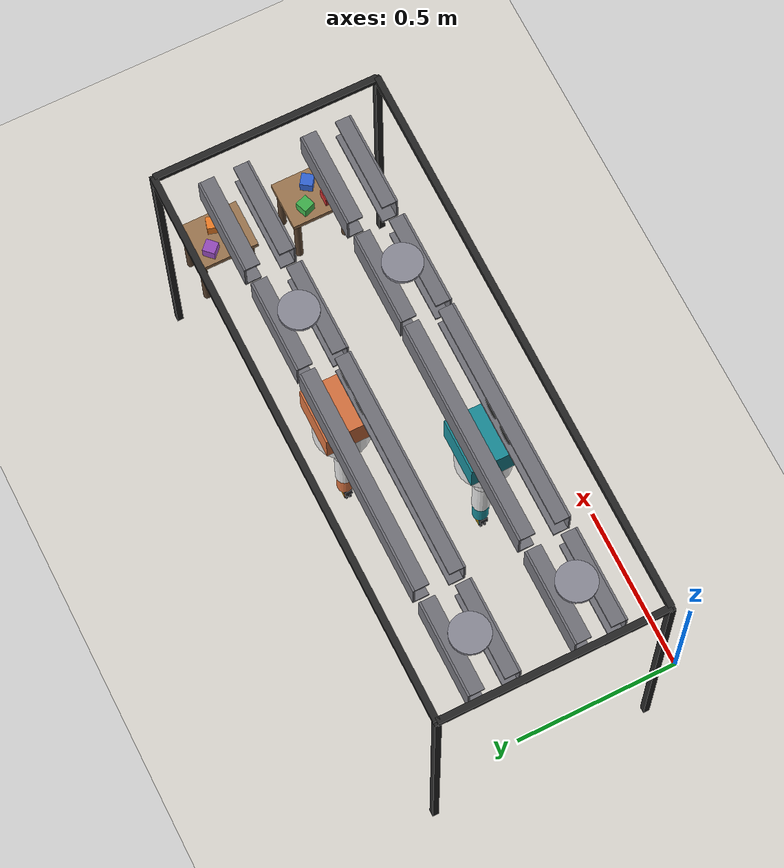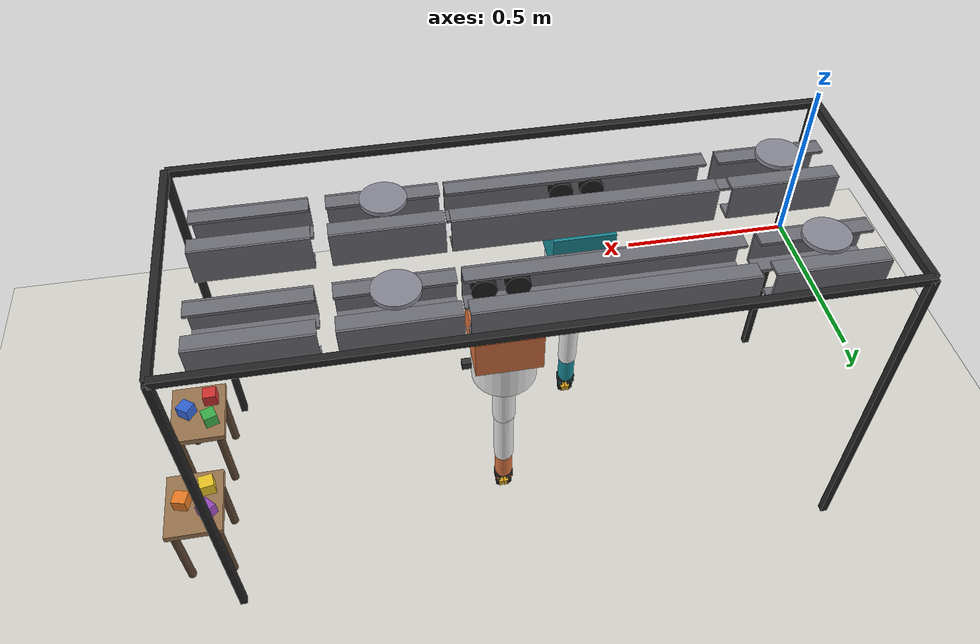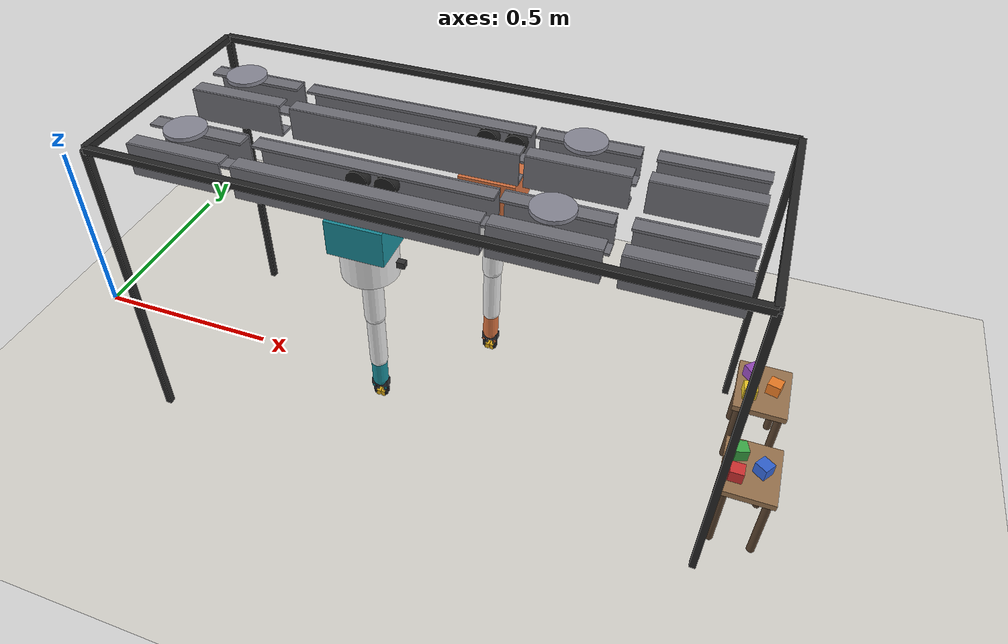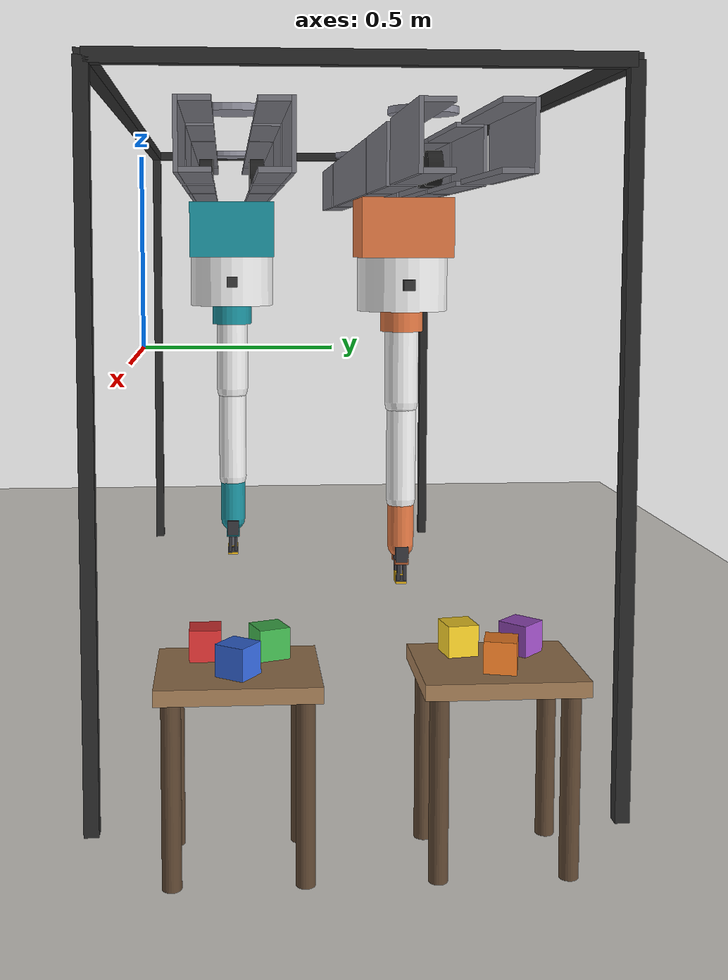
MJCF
<mujoco model="locobot_fleet_v1">
  <!-- Dimensions extracted from Full_Grid.glb (meters):
       lanes y=0.231/0.551, stations x=0.211/1.251, segment 292mm, gauge 80mm,
       fixed rails x 0.391..1.091, bot 247x228mm, charging bay x>1.40 -->

  <compiler angle="radian"/>

  <option timestep="0.002" gravity="0 0 -9.81"/>
  <visual><headlight ambient="0.45 0.45 0.45" diffuse="0.55 0.55 0.55"/></visual>

  <default>
    <joint damping="0.05"/>
    <position kp="8" forcerange="-1.47 1.47"/>
    <default class="sc15">
      <position kp="20" dampratio="1" forcerange="-1.67 1.67"/>
      <joint armature="0.01"/>
    </default>
    <!-- claw: outer links driven by the 6th SC15 (same gains/cap), range = jaw travel -->
    <default class="claw">
      <joint type="hinge" range="0 1.2" armature="0.002" damping="0.02"/>
      <position kp="20" dampratio="1" forcerange="-1.67 1.67" ctrlrange="0 1.2"/>
    </default>
    <!-- jaw counter-rotation joint: held at -(link angle) by equality = parallelogram -->
    <default class="claw_jaw">
      <joint type="hinge" range="-1.2 0" armature="0.002" damping="0.02"/>
    </default>
    <!-- the parallelogram's inner link is a rigid bar: stiffest stable equality
         (timeconst = 2x timestep), else squeeze torque twists the jaws -->
    <default class="rigid_link">
      <equality solref="0.004 1" solimp="0.95 0.99 0.001"/>
    </default>
    <default class="claw_link">
      <geom type="box" size="0.0025 0.003 0.0175" mass="0.005" rgba="0.2 0.2 0.22 1"/>
    </default>
    <default class="claw_jawplate">
      <geom type="box" size="0.0035 0.010 0.006" mass="0.006" rgba="0.2 0.2 0.22 1"/>
    </default>
    <default class="jaw">
      <geom type="box" size="0.0065 0.010 0.0093" mass="0.005" rgba="0.9 0.7 0.1 1"
            condim="4" friction="1.2 0.02 0.001" priority="1"
            solref="0.004 1" solimp="0.95 0.99 0.0005"/>
    </default>
    <!-- visual-only parts (hubs, inner links): no contact, no mass -->
    <default class="claw_vis">
      <geom contype="0" conaffinity="0" mass="0"/>
      <joint type="hinge" armature="0.0001" damping="0.001"/>
    </default>
    <default class="frame">
      <geom contype="0" conaffinity="0" rgba="0.15 0.15 0.15 1"/>
    </default>
    <default class="cweb">
      <geom contype="0" conaffinity="0" type="box" rgba="0.45 0.45 0.48 1"/>
    </default>
  </default>

  <worldbody>
    <geom name="floor" type="plane" size="2 2 0.1" pos="0.88 0.35 -0.5" rgba="0.87 0.86 0.83 1"/>

    <!-- frame rails (visual only): the four fixed lane rails + frame edges -->
    <!-- fixed lane rails: real C-section 100x50, web 6.4, flange 7.9, clear 147.2 -->
    <geom class="cweb" size="0.35 0.0032 0.05"   pos="0.741 0.3078 0.41"/>
    <geom class="cweb" size="0.35 0.0218 0.00395" pos="0.741 0.2828 0.4560"/>
    <geom class="cweb" size="0.35 0.0218 0.00395" pos="0.741 0.2828 0.3640"/>
    <geom class="cweb" size="0.35 0.0032 0.05"   pos="0.741 0.1542 0.41"/>
    <geom class="cweb" size="0.35 0.0218 0.00395" pos="0.741 0.1792 0.4560"/>
    <geom class="cweb" size="0.35 0.0218 0.00395" pos="0.741 0.1792 0.3640"/>
    <geom class="cweb" size="0.35 0.0032 0.05"   pos="0.741 0.6278 0.41"/>
    <geom class="cweb" size="0.35 0.0218 0.00395" pos="0.741 0.6028 0.4560"/>
    <geom class="cweb" size="0.35 0.0218 0.00395" pos="0.741 0.6028 0.3640"/>
    <geom class="cweb" size="0.35 0.0032 0.05"   pos="0.741 0.4742 0.41"/>
    <geom class="cweb" size="0.35 0.0218 0.00395" pos="0.741 0.4992 0.4560"/>
    <geom class="cweb" size="0.35 0.0218 0.00395" pos="0.741 0.4992 0.3640"/>
    <!-- charging bay rails, BOTH lanes continue into the bay -->
    <geom class="cweb" size="0.15 0.0032 0.05"   pos="1.59 0.6278 0.41"/>
    <geom class="cweb" size="0.15 0.0218 0.00395" pos="1.59 0.6028 0.456"/>
    <geom class="cweb" size="0.15 0.0218 0.00395" pos="1.59 0.6028 0.364"/>
    <geom class="cweb" size="0.15 0.0032 0.05"   pos="1.59 0.4742 0.41"/>
    <geom class="cweb" size="0.15 0.0218 0.00395" pos="1.59 0.4992 0.456"/>
    <geom class="cweb" size="0.15 0.0218 0.00395" pos="1.59 0.4992 0.364"/>

    <geom class="cweb" size="0.15 0.0032 0.05"   pos="1.59 0.3078 0.41"/>
    <geom class="cweb" size="0.15 0.0218 0.00395" pos="1.59 0.2828 0.4560"/>
    <geom class="cweb" size="0.15 0.0218 0.00395" pos="1.59 0.2828 0.3640"/>
    <geom class="cweb" size="0.15 0.0032 0.05"   pos="1.59 0.1542 0.41"/>
    <geom class="cweb" size="0.15 0.0218 0.00395" pos="1.59 0.1792 0.4560"/>
    <geom class="cweb" size="0.15 0.0218 0.00395" pos="1.59 0.1792 0.3640"/>
    <!-- frame outline -->
    <geom class="frame" type="box" size="0.88 0.01 0.01" pos="0.911 0.041 0.5"/>
    <geom class="frame" type="box" size="0.88 0.01 0.01" pos="0.911 0.741 0.5"/>
    <geom class="frame" type="box" size="0.01 0.35 0.01" pos="0.031 0.391 0.5"/>
    <geom class="frame" type="box" size="0.01 0.35 0.01" pos="1.791 0.391 0.5"/>
    <geom class="frame" type="box" size="0.01 0.01 0.5" pos="0.031 0.041 0.0"/>
    <geom class="frame" type="box" size="0.01 0.01 0.5" pos="0.031 0.741 0.0"/>
    <geom class="frame" type="box" size="0.01 0.01 0.5" pos="1.791 0.041 0.0"/>
    <geom class="frame" type="box" size="0.01 0.01 0.5" pos="1.791 0.741 0.0"/>

    <body name="table_A" pos="1.88 0.231 -0.26">
      <geom name="table_A_top" type="box" size="0.08 0.10 0.01" rgba="0.62 0.47 0.32 1"/>
      <geom type="cylinder" size="0.012 0.115" pos="  0.06   0.08 -0.125" rgba="0.35 0.26 0.18 1"/>
      <geom type="cylinder" size="0.012 0.115" pos="  0.06  -0.08 -0.125" rgba="0.35 0.26 0.18 1"/>
      <geom type="cylinder" size="0.012 0.115" pos=" -0.06   0.08 -0.125" rgba="0.35 0.26 0.18 1"/>
      <geom type="cylinder" size="0.012 0.115" pos=" -0.06  -0.08 -0.125" rgba="0.35 0.26 0.18 1"/>
    </body>
    <body name="table_B" pos="1.88 0.551 -0.26">
      <geom name="table_B_top" type="box" size="0.08 0.10 0.01" rgba="0.62 0.47 0.32 1"/>
      <geom type="cylinder" size="0.012 0.115" pos="  0.06   0.08 -0.125" rgba="0.35 0.26 0.18 1"/>
      <geom type="cylinder" size="0.012 0.115" pos="  0.06  -0.08 -0.125" rgba="0.35 0.26 0.18 1"/>
      <geom type="cylinder" size="0.012 0.115" pos=" -0.06   0.08 -0.125" rgba="0.35 0.26 0.18 1"/>
      <geom type="cylinder" size="0.012 0.115" pos=" -0.06  -0.08 -0.125" rgba="0.35 0.26 0.18 1"/>
    </body>

    <!-- ============ TURNTABLES: hinge about Z, rail segment rides on top ============ -->
    <!-- left station x=0.211: A1 (lane A) + B1 (lane B), shaft-coupled via equality -->
    <body name="tt_A1" pos="0.211 0.231 0.492">
      <joint name="tt_A1_rot" type="hinge" axis="0 0 1" damping="8"/>
      <geom type="cylinder" size="0.060 0.006" contype="0" conaffinity="0" rgba="0.55 0.55 0.6 1"/>
      <geom class="cweb" size="0.146 0.0032 0.05"    pos="0 0.0768 -0.082"/>
      <geom class="cweb" size="0.146 0.0218 0.00395" pos="0 0.0518 -0.036"/>
      <geom class="cweb" size="0.146 0.0218 0.00395" pos="0 0.0518 -0.128"/>
      <geom class="cweb" size="0.146 0.0032 0.05"    pos="0 -0.0768 -0.082"/>
      <geom class="cweb" size="0.146 0.0218 0.00395" pos="0 -0.0518 -0.036"/>
      <geom class="cweb" size="0.146 0.0218 0.00395" pos="0 -0.0518 -0.128"/>
    </body>
    <body name="tt_B1" pos="0.211 0.551 0.492">
      <joint name="tt_B1_rot" type="hinge" axis="0 0 1" damping="8"/>
      <geom type="cylinder" size="0.060 0.006" contype="0" conaffinity="0" rgba="0.55 0.55 0.6 1"/>
      <geom class="cweb" size="0.146 0.0032 0.05"    pos="0 0.0768 -0.082"/>
      <geom class="cweb" size="0.146 0.0218 0.00395" pos="0 0.0518 -0.036"/>
      <geom class="cweb" size="0.146 0.0218 0.00395" pos="0 0.0518 -0.128"/>
      <geom class="cweb" size="0.146 0.0032 0.05"    pos="0 -0.0768 -0.082"/>
      <geom class="cweb" size="0.146 0.0218 0.00395" pos="0 -0.0518 -0.036"/>
      <geom class="cweb" size="0.146 0.0218 0.00395" pos="0 -0.0518 -0.128"/>
    </body>
    <!-- right station x=1.251: A2 + B2 -->
    <body name="tt_A2" pos="1.251 0.231 0.492">
      <joint name="tt_A2_rot" type="hinge" axis="0 0 1" damping="8"/>
      <geom type="cylinder" size="0.060 0.006" contype="0" conaffinity="0" rgba="0.55 0.55 0.6 1"/>
      <geom class="cweb" size="0.146 0.0032 0.05"    pos="0 0.0768 -0.082"/>
      <geom class="cweb" size="0.146 0.0218 0.00395" pos="0 0.0518 -0.036"/>
      <geom class="cweb" size="0.146 0.0218 0.00395" pos="0 0.0518 -0.128"/>
      <geom class="cweb" size="0.146 0.0032 0.05"    pos="0 -0.0768 -0.082"/>
      <geom class="cweb" size="0.146 0.0218 0.00395" pos="0 -0.0518 -0.036"/>
      <geom class="cweb" size="0.146 0.0218 0.00395" pos="0 -0.0518 -0.128"/>
    </body>
    <body name="tt_B2" pos="1.251 0.551 0.492">
      <joint name="tt_B2_rot" type="hinge" axis="0 0 1" damping="8"/>
      <geom type="cylinder" size="0.060 0.006" contype="0" conaffinity="0" rgba="0.55 0.55 0.6 1"/>
      <geom class="cweb" size="0.146 0.0032 0.05"    pos="0 0.0768 -0.082"/>
      <geom class="cweb" size="0.146 0.0218 0.00395" pos="0 0.0518 -0.036"/>
      <geom class="cweb" size="0.146 0.0218 0.00395" pos="0 0.0518 -0.128"/>
      <geom class="cweb" size="0.146 0.0032 0.05"    pos="0 -0.0768 -0.082"/>
      <geom class="cweb" size="0.146 0.0218 0.00395" pos="0 -0.0518 -0.036"/>
      <geom class="cweb" size="0.146 0.0218 0.00395" pos="0 -0.0518 -0.128"/>
    </body>

    <body name="bot" pos="0.741 0.231 0.41">
      <joint name="bot_x"   type="slide" axis="1 0 0" range="-0.681 0.959" damping="2"/>
      <joint name="bot_y"   type="slide" axis="0 1 0" range="-0.051 0.329" damping="2"/>
      <joint name="bot_yaw" type="hinge" axis="0 0 1" range="-0.1 1.67" damping="1"/>
      <!-- four wheels riding inside the C-channels (axle plane = body origin, z=0.41) -->
      <geom type="cylinder" size="0.0325 0.014" zaxis="0 1 0" pos=" 0.042  0.051 0" mass="0.05" rgba="0.12 0.12 0.12 1"/>
      <geom type="cylinder" size="0.0325 0.014" zaxis="0 1 0" pos=" 0.042 -0.051 0" mass="0.05" rgba="0.12 0.12 0.12 1"/>
      <geom type="cylinder" size="0.0325 0.014" zaxis="0 1 0" pos="-0.042  0.051 0" mass="0.05" rgba="0.12 0.12 0.12 1"/>
      <geom type="cylinder" size="0.0325 0.014" zaxis="0 1 0" pos="-0.042 -0.051 0" mass="0.05" rgba="0.12 0.12 0.12 1"/>
      <!-- chassis / electronics box, top clears the channel undersides -->
      <geom name="chassis" type="box" size="0.085 0.085 0.055" pos="0 0 -0.11" mass="1.2" rgba="0.1 0.55 0.6 1"/>
      <!-- yaw stage housing, O170 x 100 -->
      <geom type="cylinder" size="0.085 0.05" pos="0 0 -0.215" mass="0.3" rgba="0.9 0.9 0.9 1"/>
      <!-- down-looking USB camera on the stage side (drawing: 34.65 offset, bot-fixed).
           MuJoCo cameras look along their -Z: identity orientation = straight down. -->
      <geom type="box" size="0.012 0.010 0.010" pos="0.097 0 -0.215" mass="0.02" rgba="0.2 0.2 0.2 1"/>
      <camera name="down_cam" pos="0.097 0 -0.228" fovy="55"/>

      <body name="arm_base" pos="0 0 -0.265">
        <joint class="sc15" name="j1_yaw" type="hinge" axis="0 0 1" range="-3.1 3.1"/>
        <geom type="cylinder" size="0.04 0.0196" pos="0 0 -0.0196" mass="0.09" rgba="0.1 0.55 0.6 1"/>
        <body name="upper_arm" pos="0 0 -0.0391">
          <joint class="sc15" name="j2_shoulder" type="hinge" axis="0 1 0" range="-1.9 1.9"/>
          <geom type="capsule" fromto="0 0 0 0 0 -0.1357" size="0.032" mass="0.12" rgba="0.9 0.9 0.9 1"/>
          <body name="forearm" pos="0 0 -0.1357">
            <joint class="sc15" name="j3_elbow" type="hinge" axis="0 1 0" range="-2.4 2.4"/>
            <geom type="capsule" fromto="0 0 0 0 0 -0.1861" size="0.028" mass="0.12" rgba="0.9 0.9 0.9 1"/>
            <body name="wrist" pos="0 0 -0.1861">
              <joint class="sc15" name="j4_wrist_pitch" type="hinge" axis="0 1 0" range="-1.9 1.9"/>
              <geom type="capsule" fromto="0 0 0 0 0 -0.09" size="0.025" mass="0.09" rgba="0.1 0.55 0.6 1"/>
              <body name="gripper" pos="0 0 -0.09">
                <joint class="sc15" name="j5_wrist_roll" type="hinge" axis="0 0 1" range="-3.1 3.1"/>
                <!-- gripper tip: wrist pitch -> tip = 90 + 64.8 = 154.8 mm (doc L3) -->
                <site name="tip" pos="0 0 -0.0648" size="0.006" rgba="1 0.4 0 1"/>
                <geom name="palm" type="box" size="0.026 0.012 0.015" pos="0 0 -0.015" mass="0.06" rgba="0.2 0.2 0.22 1"/>
                <geom class="claw_vis" type="cylinder" size="0.005 0.013" zaxis="0 1 0" pos=" 0.020 0 -0.030" rgba="0.1 0.55 0.6 1"/>
                <geom class="claw_vis" type="cylinder" size="0.005 0.013" zaxis="0 1 0" pos="-0.020 0 -0.030" rgba="0.1 0.55 0.6 1"/>
                <body name="link_r" pos="0.020 0 -0.030">
                  <joint class="claw" name="claw_r" axis="0 -1 0"/>
                  <geom class="claw_link" pos="0 0.006 -0.0175"/>
                  <geom class="claw_link" pos="0 -0.006 -0.0175"/>
                  <body name="jaw_r" pos="0 0 -0.035">
                    <joint class="claw_jaw" name="jaw_r" axis="0 -1 0"/>
                    <geom class="claw_jawplate" pos="-0.005 0 0.002"/>
                    <geom class="jaw" name="pad_r" pos="-0.0125 0 0.0002"/>
                  </body>
                </body>
                <body name="link2_r" pos="0.010 0 -0.030">
                  <joint class="claw_vis" name="link2_r" axis="0 -1 0"/>
                  <geom class="claw_vis" type="box" size="0.002 0.003 0.0175" pos="0 0 -0.0175" mass="0.001" rgba="0.35 0.35 0.38 1"/>
                </body>
                <body name="link_l" pos="-0.020 0 -0.030">
                  <joint class="claw" name="claw_l" axis="0 1 0"/>
                  <geom class="claw_link" pos="0 0.006 -0.0175"/>
                  <geom class="claw_link" pos="0 -0.006 -0.0175"/>
                  <body name="jaw_l" pos="0 0 -0.035">
                    <joint class="claw_jaw" name="jaw_l" axis="0 1 0"/>
                    <geom class="claw_jawplate" pos="0.005 0 0.002"/>
                    <geom class="jaw" name="pad_l" pos="0.0125 0 0.0002"/>
                  </body>
                </body>
                <body name="link2_l" pos="-0.010 0 -0.030">
                  <joint class="claw_vis" name="link2_l" axis="0 1 0"/>
                  <geom class="claw_vis" type="box" size="0.002 0.003 0.0175" pos="0 0 -0.0175" mass="0.001" rgba="0.35 0.35 0.38 1"/>
                </body>
              </body>
            </body>
          </body>
        </body>
      </body>
    </body>
    <body name="bot2" pos="1.0 0.551 0.41">
      <joint name="b2_x"   type="slide" axis="1 0 0" range="-0.94 0.70" damping="2"/>
      <joint name="b2_y"   type="slide" axis="0 1 0" range="-0.371 0.049" damping="2"/>
      <joint name="b2_yaw" type="hinge" axis="0 0 1" range="-0.1 1.67" damping="1"/>
      <!-- four wheels riding inside the C-channels (axle plane = body origin, z=0.41) -->
      <geom type="cylinder" size="0.0325 0.014" zaxis="0 1 0" pos=" 0.042  0.051 0" mass="0.05" rgba="0.12 0.12 0.12 1"/>
      <geom type="cylinder" size="0.0325 0.014" zaxis="0 1 0" pos=" 0.042 -0.051 0" mass="0.05" rgba="0.12 0.12 0.12 1"/>
      <geom type="cylinder" size="0.0325 0.014" zaxis="0 1 0" pos="-0.042  0.051 0" mass="0.05" rgba="0.12 0.12 0.12 1"/>
      <geom type="cylinder" size="0.0325 0.014" zaxis="0 1 0" pos="-0.042 -0.051 0" mass="0.05" rgba="0.12 0.12 0.12 1"/>
      <!-- chassis / electronics box, top clears the channel undersides -->
      <geom name="chassis2" type="box" size="0.085 0.085 0.055" pos="0 0 -0.11" mass="1.2" rgba="0.85 0.45 0.25 1"/>
      <!-- yaw stage housing, O170 x 100 -->
      <geom type="cylinder" size="0.085 0.05" pos="0 0 -0.215" mass="0.3" rgba="0.9 0.9 0.9 1"/>
      <!-- down-looking USB camera on the stage side (drawing: 34.65 offset, bot-fixed).
           MuJoCo cameras look along their -Z: identity orientation = straight down. -->
      <geom type="box" size="0.012 0.010 0.010" pos="0.097 0 -0.215" mass="0.02" rgba="0.2 0.2 0.2 1"/>
      <camera name="down_cam_b2" pos="0.097 0 -0.228" fovy="55"/>

      <body name="arm_base2" pos="0 0 -0.265">
        <joint class="sc15" name="j1_yaw_b2" type="hinge" axis="0 0 1" range="-3.1 3.1"/>
        <geom type="cylinder" size="0.04 0.0196" pos="0 0 -0.0196" mass="0.09" rgba="0.85 0.45 0.25 1"/>
        <body name="upper_arm2" pos="0 0 -0.0391">
          <joint class="sc15" name="j2_shoulder_b2" type="hinge" axis="0 1 0" range="-1.9 1.9"/>
          <geom type="capsule" fromto="0 0 0 0 0 -0.1357" size="0.032" mass="0.12" rgba="0.9 0.9 0.9 1"/>
          <body name="forearm2" pos="0 0 -0.1357">
            <joint class="sc15" name="j3_elbow_b2" type="hinge" axis="0 1 0" range="-2.4 2.4"/>
            <geom type="capsule" fromto="0 0 0 0 0 -0.1861" size="0.028" mass="0.12" rgba="0.9 0.9 0.9 1"/>
            <body name="wrist2" pos="0 0 -0.1861">
              <joint class="sc15" name="j4_wrist_pitch_b2" type="hinge" axis="0 1 0" range="-1.9 1.9"/>
              <geom type="capsule" fromto="0 0 0 0 0 -0.09" size="0.025" mass="0.09" rgba="0.85 0.45 0.25 1"/>
              <body name="gripper2" pos="0 0 -0.09">
                <joint class="sc15" name="j5_wrist_roll_b2" type="hinge" axis="0 0 1" range="-3.1 3.1"/>
                <!-- gripper tip: wrist pitch -> tip = 90 + 64.8 = 154.8 mm (doc L3) -->
                <site name="tip_b2" pos="0 0 -0.0648" size="0.006" rgba="1 0.4 0 1"/>
                <geom name="palm_b2" type="box" size="0.026 0.012 0.015" pos="0 0 -0.015" mass="0.06" rgba="0.2 0.2 0.22 1"/>
                <geom class="claw_vis" type="cylinder" size="0.005 0.013" zaxis="0 1 0" pos=" 0.020 0 -0.030" rgba="0.85 0.45 0.25 1"/>
                <geom class="claw_vis" type="cylinder" size="0.005 0.013" zaxis="0 1 0" pos="-0.020 0 -0.030" rgba="0.85 0.45 0.25 1"/>
                <body name="link_r_b2" pos="0.020 0 -0.030">
                  <joint class="claw" name="claw_r_b2" axis="0 -1 0"/>
                  <geom class="claw_link" pos="0 0.006 -0.0175"/>
                  <geom class="claw_link" pos="0 -0.006 -0.0175"/>
                  <body name="jaw_r_b2" pos="0 0 -0.035">
                    <joint class="claw_jaw" name="jaw_r_b2" axis="0 -1 0"/>
                    <geom class="claw_jawplate" pos="-0.005 0 0.002"/>
                    <geom class="jaw" name="pad_r_b2" pos="-0.0125 0 0.0002"/>
                  </body>
                </body>
                <body name="link2_r_b2" pos="0.010 0 -0.030">
                  <joint class="claw_vis" name="link2_r_b2" axis="0 -1 0"/>
                  <geom class="claw_vis" type="box" size="0.002 0.003 0.0175" pos="0 0 -0.0175" mass="0.001" rgba="0.35 0.35 0.38 1"/>
                </body>
                <body name="link_l_b2" pos="-0.020 0 -0.030">
                  <joint class="claw" name="claw_l_b2" axis="0 1 0"/>
                  <geom class="claw_link" pos="0 0.006 -0.0175"/>
                  <geom class="claw_link" pos="0 -0.006 -0.0175"/>
                  <body name="jaw_l_b2" pos="0 0 -0.035">
                    <joint class="claw_jaw" name="jaw_l_b2" axis="0 1 0"/>
                    <geom class="claw_jawplate" pos="0.005 0 0.002"/>
                    <geom class="jaw" name="pad_l_b2" pos="0.0125 0 0.0002"/>
                  </body>
                </body>
                <body name="link2_l_b2" pos="-0.010 0 -0.030">
                  <joint class="claw_vis" name="link2_l_b2" axis="0 1 0"/>
                  <geom class="claw_vis" type="box" size="0.002 0.003 0.0175" pos="0 0 -0.0175" mass="0.001" rgba="0.35 0.35 0.38 1"/>
                </body>
              </body>
            </body>
          </body>
        </body>
      </body>
    </body>

    <body name="cube_red" pos="1.84 0.191 -0.23">
      <freejoint name="cube_red_free"/>
      <geom name="cube_red" type="box" size="0.02 0.02 0.02" mass="0.03" rgba="0.85 0.2 0.2 1"/>
    </body>
    <body name="cube_green" pos="1.84 0.271 -0.23" euler="0 0 0.35">
      <freejoint name="cube_green_free"/>
      <geom name="cube_green" type="box" size="0.02 0.02 0.02" mass="0.03" rgba="0.25 0.7 0.3 1"/>
    </body>
    <body name="cube_blue" pos="1.91 0.231 -0.23" euler="0 0 -0.61">
      <freejoint name="cube_blue_free"/>
      <geom name="cube_blue" type="box" size="0.02 0.02 0.02" mass="0.03" rgba="0.2 0.4 0.85 1"/>
    </body>
    <body name="cube_yellow" pos="1.84 0.511 -0.23" euler="0 0 0.17">
      <freejoint name="cube_yellow_free"/>
      <geom name="cube_yellow" type="box" size="0.02 0.02 0.02" mass="0.03" rgba="0.95 0.8 0.15 1"/>
    </body>
    <body name="cube_purple" pos="1.84 0.591 -0.23" euler="0 0 0.79">
      <freejoint name="cube_purple_free"/>
      <geom name="cube_purple" type="box" size="0.02 0.02 0.02" mass="0.03" rgba="0.6 0.3 0.75 1"/>
    </body>
    <body name="cube_orange" pos="1.91 0.551 -0.23" euler="0 0 -0.26">
      <freejoint name="cube_orange_free"/>
      <geom name="cube_orange" type="box" size="0.02 0.02 0.02" mass="0.03" rgba="0.95 0.5 0.15 1"/>
    </body>
  </worldbody>

  <equality>
    <!-- the shared drive shaft at each station: both turntables rotate together -->
    <joint joint1="tt_A1_rot" joint2="tt_B1_rot" polycoef="0 1 0 0 0"/>
    <joint joint1="tt_A2_rot" joint2="tt_B2_rot" polycoef="0 1 0 0 0"/>
    <joint joint1="claw_l"  joint2="claw_r" polycoef="0 1 0 0 0"/>
    <joint joint1="jaw_r"   joint2="claw_r" polycoef="0 -1 0 0 0" class="rigid_link"/>
    <joint joint1="jaw_l"   joint2="claw_l" polycoef="0 -1 0 0 0" class="rigid_link"/>
    <joint joint1="link2_r" joint2="claw_r" polycoef="0 1 0 0 0"/>
    <joint joint1="link2_l" joint2="claw_l" polycoef="0 1 0 0 0"/>
    <joint joint1="claw_l_b2"  joint2="claw_r_b2" polycoef="0 1 0 0 0"/>
    <joint joint1="jaw_r_b2"   joint2="claw_r_b2" polycoef="0 -1 0 0 0" class="rigid_link"/>
    <joint joint1="jaw_l_b2"   joint2="claw_l_b2" polycoef="0 -1 0 0 0" class="rigid_link"/>
    <joint joint1="link2_r_b2" joint2="claw_r_b2" polycoef="0 1 0 0 0"/>
    <joint joint1="link2_l_b2" joint2="claw_l_b2" polycoef="0 1 0 0 0"/>
  </equality>

  <actuator>
    <!-- bot drive: same N20, direction resolved by which axis it's traveling -->
    <velocity name="drive_x" joint="bot_x" kv="40" ctrlrange="-0.13 0.13" forcerange="-8 8"/>
    <velocity name="drive_y" joint="bot_y" kv="40" ctrlrange="-0.13 0.13" forcerange="-8 8"/>
    <!-- bot yaw follows the turntable during rotation (soft lock behavior) -->
    <position name="yaw_hold" joint="bot_yaw" kp="20" forcerange="-3 3" ctrlrange="-0.1 1.67"/>
    <!-- one worm-geared motor per station drives the coupled pair; worm = stiff, not backdrivable -->
    <position name="tt_left"  joint="tt_A1_rot" kp="60" forcerange="-20 20" ctrlrange="0 1.5708"/>
    <position name="tt_right" joint="tt_A2_rot" kp="60" forcerange="-20 20" ctrlrange="0 1.5708"/>
    <!-- arm -->
    <velocity name="drive2_x" joint="b2_x" kv="40" ctrlrange="-0.13 0.13" forcerange="-8 8"/>
    <velocity name="drive2_y" joint="b2_y" kv="40" ctrlrange="-0.13 0.13" forcerange="-8 8"/>
    <position name="yaw2_hold" joint="b2_yaw" kp="20" forcerange="-3 3" ctrlrange="-0.1 1.67"/>
    <position class="sc15" name="a1" joint="j1_yaw" ctrlrange="-3.1 3.1"/>
    <position class="sc15" name="a2" joint="j2_shoulder" ctrlrange="-1.9 1.9"/>
    <position class="sc15" name="a3" joint="j3_elbow" ctrlrange="-2.4 2.4"/>
    <position class="sc15" name="a4" joint="j4_wrist_pitch" ctrlrange="-1.9 1.9"/>
    <position class="sc15" name="a5" joint="j5_wrist_roll" ctrlrange="-3.1 3.1"/>
    <position class="sc15" name="a1_b2" joint="j1_yaw_b2" ctrlrange="-3.1 3.1"/>
    <position class="sc15" name="a2_b2" joint="j2_shoulder_b2" ctrlrange="-1.9 1.9"/>
    <position class="sc15" name="a3_b2" joint="j3_elbow_b2" ctrlrange="-2.4 2.4"/>
    <position class="sc15" name="a4_b2" joint="j4_wrist_pitch_b2" ctrlrange="-1.9 1.9"/>
    <position class="sc15" name="a5_b2" joint="j5_wrist_roll_b2" ctrlrange="-3.1 3.1"/>
    <!-- claw servo (6th SC15): separate channel from the arm spline (§1.8) -->
    <position class="claw" name="claw" joint="claw_r"/>
    <position class="claw" name="claw_b2" joint="claw_r_b2"/>
  </actuator>

  <sensor>
    <jointpos name="bot_x_pos" joint="bot_x"/>
    <jointpos name="bot_y_pos" joint="bot_y"/>
    <jointpos name="bot_yaw_pos" joint="bot_yaw"/>
    <jointpos name="q1_pos" joint="j1_yaw"/>
    <jointpos name="q2_pos" joint="j2_shoulder"/>
    <jointpos name="q3_pos" joint="j3_elbow"/>
    <jointpos name="q4_pos" joint="j4_wrist_pitch"/>
    <jointpos name="q1_b2_pos" joint="j1_yaw_b2"/>
    <jointpos name="q2_b2_pos" joint="j2_shoulder_b2"/>
    <jointpos name="q3_b2_pos" joint="j3_elbow_b2"/>
    <jointpos name="q4_b2_pos" joint="j4_wrist_pitch_b2"/>
    <jointpos name="b2_x_pos" joint="b2_x"/>
    <jointpos name="b2_y_pos" joint="b2_y"/>
    <jointpos name="b2_yaw_pos" joint="b2_yaw"/>
    <jointpos name="tt_left_pos" joint="tt_A1_rot"/>
    <jointpos name="tt_right_pos" joint="tt_A2_rot"/>
    <jointpos name="claw_pos" joint="claw_r"/>
    <jointpos name="claw_b2_pos" joint="claw_r_b2"/>
  </sensor>
</mujoco>
